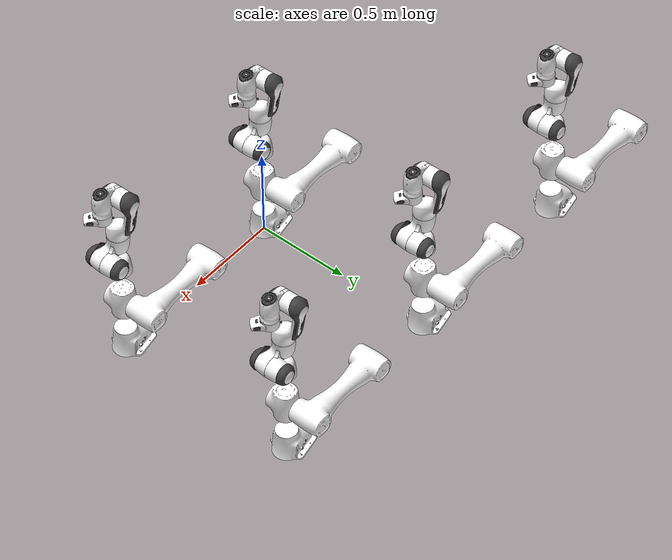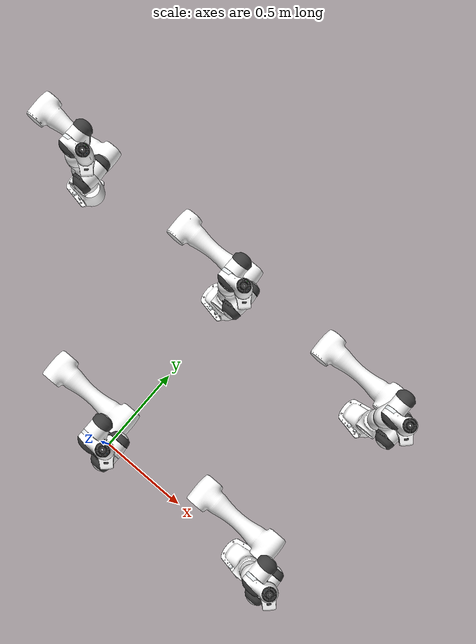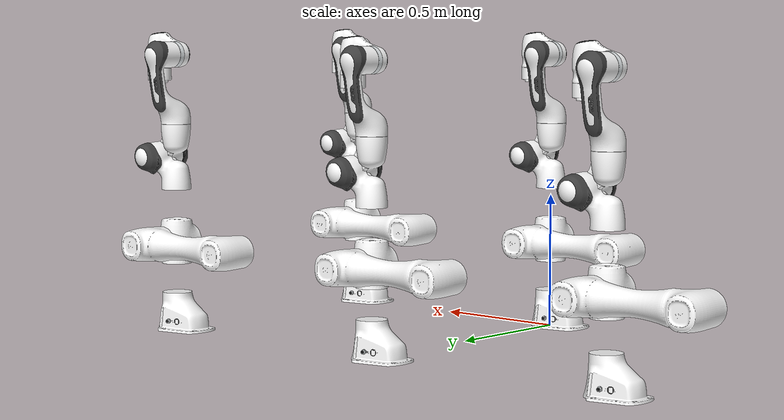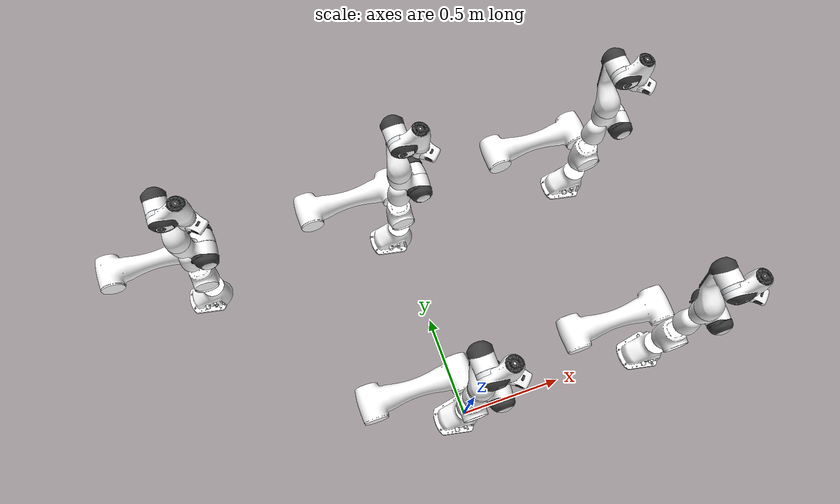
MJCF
<mujoco><compiler angle="radian" meshdir="assets" autolimits="true" />

  <option integrator="implicitfast" />

  <asset>
    <material name="white" rgba="1 1 1 1" />
    <material name="off_white" rgba="0.901961 0.921569 0.929412 1" />
    <material name="dark_grey" rgba="0.25 0.25 0.25 1" />
    <material name="green" rgba="0 1 0 1" />
    <material name="light_blue" rgba="0.039216 0.541176 0.780392 1" />

    <mesh name="link0_c" file="link0.stl" />
    <mesh name="link1_c" file="link1.stl" />
    <mesh name="link2_c" file="link2.stl" />
    <mesh name="link3_c" file="link3.stl" />
    <mesh name="link4_c" file="link4.stl" />
    <mesh name="link5_c0" file="link5_collision_0.obj" />
    <mesh name="link5_c1" file="link5_collision_1.obj" />
    <mesh name="link5_c2" file="link5_collision_2.obj" />
    <mesh name="link6_c" file="link6.stl" />
    <mesh name="link7_c" file="link7.stl" />

    <mesh file="link0_0.obj" />
    <mesh file="link0_1.obj" />
    <mesh file="link0_2.obj" />
    <mesh file="link0_3.obj" />
    <mesh file="link0_4.obj" />
    <mesh file="link0_5.obj" />
    <mesh file="link0_7.obj" />
    <mesh file="link0_8.obj" />
    <mesh file="link0_9.obj" />
    <mesh file="link0_10.obj" />
    <mesh file="link0_11.obj" />
    <mesh file="link1.obj" />
    <mesh file="link2.obj" />
    <mesh file="link3_0.obj" />
    <mesh file="link3_1.obj" />
    <mesh file="link3_2.obj" />
    <mesh file="link3_3.obj" />
    <mesh file="link4_0.obj" />
    <mesh file="link4_1.obj" />
    <mesh file="link4_2.obj" />
    <mesh file="link4_3.obj" />
    <mesh file="link5_0.obj" />
    <mesh file="link5_1.obj" />
    <mesh file="link5_2.obj" />
    <mesh file="link6_0.obj" />
    <mesh file="link6_1.obj" />
    <mesh file="link6_2.obj" />
    <mesh file="link6_3.obj" />
    <mesh file="link6_4.obj" />
    <mesh file="link6_5.obj" />
    <mesh file="link6_6.obj" />
    <mesh file="link6_7.obj" />
    <mesh file="link6_8.obj" />
    <mesh file="link6_9.obj" />
    <mesh file="link6_10.obj" />
    <mesh file="link6_11.obj" />
    <mesh file="link6_12.obj" />
    <mesh file="link6_13.obj" />
    <mesh file="link6_14.obj" />
    <mesh file="link6_15.obj" />
    <mesh file="link6_16.obj" />
    <mesh file="link7_0.obj" />
    <mesh file="link7_1.obj" />
    <mesh file="link7_2.obj" />
    <mesh file="link7_3.obj" />
    <mesh file="link7_4.obj" />
    <mesh file="link7_5.obj" />
    <mesh file="link7_6.obj" />
    <mesh file="link7_7.obj" />
  </asset>

  <worldbody><body name="link0_copy_0" childclass="panda" pos="0 0 0">
      <inertial mass="0.629769" pos="-0.041018 -0.00014 0.049974" fullinertia="0.00315 0.00388 0.004285 8.2904e-7 0.00015 8.2299e-6" />
      <geom mesh="link0_0" material="off_white" class="panda/visual" />
      <geom mesh="link0_1" material="dark_grey" class="panda/visual" />
      <geom mesh="link0_2" material="off_white" class="panda/visual" />
      <geom mesh="link0_3" material="dark_grey" class="panda/visual" />
      <geom mesh="link0_4" material="off_white" class="panda/visual" />
      <geom mesh="link0_5" material="dark_grey" class="panda/visual" />
      <geom mesh="link0_7" material="white" class="panda/visual" />
      <geom mesh="link0_8" material="white" class="panda/visual" />
      <geom mesh="link0_9" material="dark_grey" class="panda/visual" />
      <geom mesh="link0_10" material="off_white" class="panda/visual" />
      <geom mesh="link0_11" material="white" class="panda/visual" />
      <geom mesh="link0_c" class="panda/collision" />
      <body name="link1_copy_0" pos="0 0 0.333">
        <inertial mass="4.970684" pos="0.003875 0.002081 -0.04762" fullinertia="0.70337 0.70661 0.0091170 -0.00013900 0.0067720 0.019169" />
        <joint name="joint1_copy_0" />
        <geom material="white" mesh="link1" class="panda/visual" />
        <geom mesh="link1_c" class="panda/collision" />
        <body name="link2_copy_0" quat="1 -1 0 0">
          <inertial mass="0.646926" pos="-0.003141 -0.02872 0.003495" fullinertia="0.0079620 2.8110e-2 2.5995e-2 -3.925e-3 1.0254e-2 7.04e-4" />
          <joint name="joint2_copy_0" range="-1.7628 1.7628" />
          <geom material="white" mesh="link2" class="panda/visual" />
          <geom mesh="link2_c" class="panda/collision" />
          <body name="link3_copy_0" pos="0 -0.316 0" quat="1 1 0 0">
            <joint name="joint3_copy_0" />
            <inertial mass="3.228604" pos="2.7518e-2 3.9252e-2 -6.6502e-2" fullinertia="3.7242e-2 3.6155e-2 1.083e-2 -4.761e-3 -1.1396e-2 -1.2805e-2" />
            <geom mesh="link3_0" material="white" class="panda/visual" />
            <geom mesh="link3_1" material="white" class="panda/visual" />
            <geom mesh="link3_2" material="white" class="panda/visual" />
            <geom mesh="link3_3" material="dark_grey" class="panda/visual" />
            <geom mesh="link3_c" class="panda/collision" />
            <body name="link4_copy_0" pos="0.0825 0 0" quat="1 1 0 0">
              <inertial mass="3.587895" pos="-5.317e-2 1.04419e-1 2.7454e-2" fullinertia="2.5853e-2 1.9552e-2 2.8323e-2 7.796e-3 -1.332e-3 8.641e-3" />
              <joint name="joint4_copy_0" range="-3.0718 -0.0698" />
              <geom mesh="link4_0" material="white" class="panda/visual" />
              <geom mesh="link4_1" material="white" class="panda/visual" />
              <geom mesh="link4_2" material="dark_grey" class="panda/visual" />
              <geom mesh="link4_3" material="white" class="panda/visual" />
              <geom mesh="link4_c" class="panda/collision" />
              <body name="link5_copy_0" pos="-0.0825 0.384 0" quat="1 -1 0 0">
                <inertial mass="1.225946" pos="-1.1953e-2 4.1065e-2 -3.8437e-2" fullinertia="3.5549e-2 2.9474e-2 8.627e-3 -2.117e-3 -4.037e-3 2.29e-4" />
                <joint name="joint5_copy_0" />
                <geom mesh="link5_0" material="dark_grey" class="panda/visual" />
                <geom mesh="link5_1" material="white" class="panda/visual" />
                <geom mesh="link5_2" material="white" class="panda/visual" />
                <geom mesh="link5_c0" class="panda/collision" />
                <geom mesh="link5_c1" class="panda/collision" />
                <geom mesh="link5_c2" class="panda/collision" />
                <body name="link6_copy_0" quat="1 1 0 0">
                  <inertial mass="1.666555" pos="6.0149e-2 -1.4117e-2 -1.0517e-2" fullinertia="1.964e-3 4.354e-3 5.433e-3 1.09e-4 -1.158e-3 3.41e-4" />
                  <joint name="joint6_copy_0" range="-0.0175 3.7525" />
                  <geom mesh="link6_0" material="off_white" class="panda/visual" />
                  <geom mesh="link6_1" material="white" class="panda/visual" />
                  <geom mesh="link6_2" material="dark_grey" class="panda/visual" />
                  <geom mesh="link6_3" material="white" class="panda/visual" />
                  <geom mesh="link6_4" material="white" class="panda/visual" />
                  <geom mesh="link6_5" material="white" class="panda/visual" />
                  <geom mesh="link6_6" material="white" class="panda/visual" />
                  <geom mesh="link6_7" material="light_blue" class="panda/visual" />
                  <geom mesh="link6_8" material="light_blue" class="panda/visual" />
                  <geom mesh="link6_9" material="dark_grey" class="panda/visual" />
                  <geom mesh="link6_10" material="dark_grey" class="panda/visual" />
                  <geom mesh="link6_11" material="white" class="panda/visual" />
                  <geom mesh="link6_12" material="green" class="panda/visual" />
                  <geom mesh="link6_13" material="white" class="panda/visual" />
                  <geom mesh="link6_14" material="dark_grey" class="panda/visual" />
                  <geom mesh="link6_15" material="dark_grey" class="panda/visual" />
                  <geom mesh="link6_16" material="white" class="panda/visual" />
                  <geom mesh="link6_c" class="panda/collision" />
                  <body name="link7_copy_0" pos="0.088 0 0" quat="1 1 0 0">
                    <inertial mass="7.35522e-01" pos="1.0517e-2 -4.252e-3 6.1597e-2" fullinertia="1.2516e-2 1.0027e-2 4.815e-3 -4.28e-4 -1.196e-3 -7.41e-4" />
                    <joint name="joint7_copy_0" />
                    <geom mesh="link7_0" material="white" class="panda/visual" />
                    <geom mesh="link7_1" material="dark_grey" class="panda/visual" />
                    <geom mesh="link7_2" material="dark_grey" class="panda/visual" />
                    <geom mesh="link7_3" material="dark_grey" class="panda/visual" />
                    <geom mesh="link7_4" material="dark_grey" class="panda/visual" />
                    <geom mesh="link7_5" material="dark_grey" class="panda/visual" />
                    <geom mesh="link7_6" material="dark_grey" class="panda/visual" />
                    <geom mesh="link7_7" material="white" class="panda/visual" />
                    <geom mesh="link7_c" class="panda/collision" />
                    <body name="attachment_copy_0" pos="0 0 0.107" quat="0.3826834 0 0 0.9238795">
                      <site name="attachment_site_copy_0" rgba="1 0 0 1" size="0.01" group="1" quat="0 0 0 1" />
                    </body>
                  </body>
                </body>
              </body>
            </body>
          </body>
        </body>
      </body>
    </body>
  <body name="link0_copy_1" childclass="panda" pos="1 0 0">
      <inertial mass="0.629769" pos="-0.041018 -0.00014 0.049974" fullinertia="0.00315 0.00388 0.004285 8.2904e-7 0.00015 8.2299e-6" />
      <geom mesh="link0_0" material="off_white" class="panda/visual" />
      <geom mesh="link0_1" material="dark_grey" class="panda/visual" />
      <geom mesh="link0_2" material="off_white" class="panda/visual" />
      <geom mesh="link0_3" material="dark_grey" class="panda/visual" />
      <geom mesh="link0_4" material="off_white" class="panda/visual" />
      <geom mesh="link0_5" material="dark_grey" class="panda/visual" />
      <geom mesh="link0_7" material="white" class="panda/visual" />
      <geom mesh="link0_8" material="white" class="panda/visual" />
      <geom mesh="link0_9" material="dark_grey" class="panda/visual" />
      <geom mesh="link0_10" material="off_white" class="panda/visual" />
      <geom mesh="link0_11" material="white" class="panda/visual" />
      <geom mesh="link0_c" class="panda/collision" />
      <body name="link1_copy_1" pos="0 0 0.333">
        <inertial mass="4.970684" pos="0.003875 0.002081 -0.04762" fullinertia="0.70337 0.70661 0.0091170 -0.00013900 0.0067720 0.019169" />
        <joint name="joint1_copy_1" />
        <geom material="white" mesh="link1" class="panda/visual" />
        <geom mesh="link1_c" class="panda/collision" />
        <body name="link2_copy_1" quat="1 -1 0 0">
          <inertial mass="0.646926" pos="-0.003141 -0.02872 0.003495" fullinertia="0.0079620 2.8110e-2 2.5995e-2 -3.925e-3 1.0254e-2 7.04e-4" />
          <joint name="joint2_copy_1" range="-1.7628 1.7628" />
          <geom material="white" mesh="link2" class="panda/visual" />
          <geom mesh="link2_c" class="panda/collision" />
          <body name="link3_copy_1" pos="0 -0.316 0" quat="1 1 0 0">
            <joint name="joint3_copy_1" />
            <inertial mass="3.228604" pos="2.7518e-2 3.9252e-2 -6.6502e-2" fullinertia="3.7242e-2 3.6155e-2 1.083e-2 -4.761e-3 -1.1396e-2 -1.2805e-2" />
            <geom mesh="link3_0" material="white" class="panda/visual" />
            <geom mesh="link3_1" material="white" class="panda/visual" />
            <geom mesh="link3_2" material="white" class="panda/visual" />
            <geom mesh="link3_3" material="dark_grey" class="panda/visual" />
            <geom mesh="link3_c" class="panda/collision" />
            <body name="link4_copy_1" pos="0.0825 0 0" quat="1 1 0 0">
              <inertial mass="3.587895" pos="-5.317e-2 1.04419e-1 2.7454e-2" fullinertia="2.5853e-2 1.9552e-2 2.8323e-2 7.796e-3 -1.332e-3 8.641e-3" />
              <joint name="joint4_copy_1" range="-3.0718 -0.0698" />
              <geom mesh="link4_0" material="white" class="panda/visual" />
              <geom mesh="link4_1" material="white" class="panda/visual" />
              <geom mesh="link4_2" material="dark_grey" class="panda/visual" />
              <geom mesh="link4_3" material="white" class="panda/visual" />
              <geom mesh="link4_c" class="panda/collision" />
              <body name="link5_copy_1" pos="-0.0825 0.384 0" quat="1 -1 0 0">
                <inertial mass="1.225946" pos="-1.1953e-2 4.1065e-2 -3.8437e-2" fullinertia="3.5549e-2 2.9474e-2 8.627e-3 -2.117e-3 -4.037e-3 2.29e-4" />
                <joint name="joint5_copy_1" />
                <geom mesh="link5_0" material="dark_grey" class="panda/visual" />
                <geom mesh="link5_1" material="white" class="panda/visual" />
                <geom mesh="link5_2" material="white" class="panda/visual" />
                <geom mesh="link5_c0" class="panda/collision" />
                <geom mesh="link5_c1" class="panda/collision" />
                <geom mesh="link5_c2" class="panda/collision" />
                <body name="link6_copy_1" quat="1 1 0 0">
                  <inertial mass="1.666555" pos="6.0149e-2 -1.4117e-2 -1.0517e-2" fullinertia="1.964e-3 4.354e-3 5.433e-3 1.09e-4 -1.158e-3 3.41e-4" />
                  <joint name="joint6_copy_1" range="-0.0175 3.7525" />
                  <geom mesh="link6_0" material="off_white" class="panda/visual" />
                  <geom mesh="link6_1" material="white" class="panda/visual" />
                  <geom mesh="link6_2" material="dark_grey" class="panda/visual" />
                  <geom mesh="link6_3" material="white" class="panda/visual" />
                  <geom mesh="link6_4" material="white" class="panda/visual" />
                  <geom mesh="link6_5" material="white" class="panda/visual" />
                  <geom mesh="link6_6" material="white" class="panda/visual" />
                  <geom mesh="link6_7" material="light_blue" class="panda/visual" />
                  <geom mesh="link6_8" material="light_blue" class="panda/visual" />
                  <geom mesh="link6_9" material="dark_grey" class="panda/visual" />
                  <geom mesh="link6_10" material="dark_grey" class="panda/visual" />
                  <geom mesh="link6_11" material="white" class="panda/visual" />
                  <geom mesh="link6_12" material="green" class="panda/visual" />
                  <geom mesh="link6_13" material="white" class="panda/visual" />
                  <geom mesh="link6_14" material="dark_grey" class="panda/visual" />
                  <geom mesh="link6_15" material="dark_grey" class="panda/visual" />
                  <geom mesh="link6_16" material="white" class="panda/visual" />
                  <geom mesh="link6_c" class="panda/collision" />
                  <body name="link7_copy_1" pos="0.088 0 0" quat="1 1 0 0">
                    <inertial mass="7.35522e-01" pos="1.0517e-2 -4.252e-3 6.1597e-2" fullinertia="1.2516e-2 1.0027e-2 4.815e-3 -4.28e-4 -1.196e-3 -7.41e-4" />
                    <joint name="joint7_copy_1" />
                    <geom mesh="link7_0" material="white" class="panda/visual" />
                    <geom mesh="link7_1" material="dark_grey" class="panda/visual" />
                    <geom mesh="link7_2" material="dark_grey" class="panda/visual" />
                    <geom mesh="link7_3" material="dark_grey" class="panda/visual" />
                    <geom mesh="link7_4" material="dark_grey" class="panda/visual" />
                    <geom mesh="link7_5" material="dark_grey" class="panda/visual" />
                    <geom mesh="link7_6" material="dark_grey" class="panda/visual" />
                    <geom mesh="link7_7" material="white" class="panda/visual" />
                    <geom mesh="link7_c" class="panda/collision" />
                    <body name="attachment_copy_1" pos="0 0 0.107" quat="0.3826834 0 0 0.9238795">
                      <site name="attachment_site_copy_1" rgba="1 0 0 1" size="0.01" group="1" quat="0 0 0 1" />
                    </body>
                  </body>
                </body>
              </body>
            </body>
          </body>
        </body>
      </body>
    </body>
  <body name="link0_copy_2" childclass="panda" pos="1 1 0">
      <inertial mass="0.629769" pos="-0.041018 -0.00014 0.049974" fullinertia="0.00315 0.00388 0.004285 8.2904e-7 0.00015 8.2299e-6" />
      <geom mesh="link0_0" material="off_white" class="panda/visual" />
      <geom mesh="link0_1" material="dark_grey" class="panda/visual" />
      <geom mesh="link0_2" material="off_white" class="panda/visual" />
      <geom mesh="link0_3" material="dark_grey" class="panda/visual" />
      <geom mesh="link0_4" material="off_white" class="panda/visual" />
      <geom mesh="link0_5" material="dark_grey" class="panda/visual" />
      <geom mesh="link0_7" material="white" class="panda/visual" />
      <geom mesh="link0_8" material="white" class="panda/visual" />
      <geom mesh="link0_9" material="dark_grey" class="panda/visual" />
      <geom mesh="link0_10" material="off_white" class="panda/visual" />
      <geom mesh="link0_11" material="white" class="panda/visual" />
      <geom mesh="link0_c" class="panda/collision" />
      <body name="link1_copy_2" pos="0 0 0.333">
        <inertial mass="4.970684" pos="0.003875 0.002081 -0.04762" fullinertia="0.70337 0.70661 0.0091170 -0.00013900 0.0067720 0.019169" />
        <joint name="joint1_copy_2" />
        <geom material="white" mesh="link1" class="panda/visual" />
        <geom mesh="link1_c" class="panda/collision" />
        <body name="link2_copy_2" quat="1 -1 0 0">
          <inertial mass="0.646926" pos="-0.003141 -0.02872 0.003495" fullinertia="0.0079620 2.8110e-2 2.5995e-2 -3.925e-3 1.0254e-2 7.04e-4" />
          <joint name="joint2_copy_2" range="-1.7628 1.7628" />
          <geom material="white" mesh="link2" class="panda/visual" />
          <geom mesh="link2_c" class="panda/collision" />
          <body name="link3_copy_2" pos="0 -0.316 0" quat="1 1 0 0">
            <joint name="joint3_copy_2" />
            <inertial mass="3.228604" pos="2.7518e-2 3.9252e-2 -6.6502e-2" fullinertia="3.7242e-2 3.6155e-2 1.083e-2 -4.761e-3 -1.1396e-2 -1.2805e-2" />
            <geom mesh="link3_0" material="white" class="panda/visual" />
            <geom mesh="link3_1" material="white" class="panda/visual" />
            <geom mesh="link3_2" material="white" class="panda/visual" />
            <geom mesh="link3_3" material="dark_grey" class="panda/visual" />
            <geom mesh="link3_c" class="panda/collision" />
            <body name="link4_copy_2" pos="0.0825 0 0" quat="1 1 0 0">
              <inertial mass="3.587895" pos="-5.317e-2 1.04419e-1 2.7454e-2" fullinertia="2.5853e-2 1.9552e-2 2.8323e-2 7.796e-3 -1.332e-3 8.641e-3" />
              <joint name="joint4_copy_2" range="-3.0718 -0.0698" />
              <geom mesh="link4_0" material="white" class="panda/visual" />
              <geom mesh="link4_1" material="white" class="panda/visual" />
              <geom mesh="link4_2" material="dark_grey" class="panda/visual" />
              <geom mesh="link4_3" material="white" class="panda/visual" />
              <geom mesh="link4_c" class="panda/collision" />
              <body name="link5_copy_2" pos="-0.0825 0.384 0" quat="1 -1 0 0">
                <inertial mass="1.225946" pos="-1.1953e-2 4.1065e-2 -3.8437e-2" fullinertia="3.5549e-2 2.9474e-2 8.627e-3 -2.117e-3 -4.037e-3 2.29e-4" />
                <joint name="joint5_copy_2" />
                <geom mesh="link5_0" material="dark_grey" class="panda/visual" />
                <geom mesh="link5_1" material="white" class="panda/visual" />
                <geom mesh="link5_2" material="white" class="panda/visual" />
                <geom mesh="link5_c0" class="panda/collision" />
                <geom mesh="link5_c1" class="panda/collision" />
                <geom mesh="link5_c2" class="panda/collision" />
                <body name="link6_copy_2" quat="1 1 0 0">
                  <inertial mass="1.666555" pos="6.0149e-2 -1.4117e-2 -1.0517e-2" fullinertia="1.964e-3 4.354e-3 5.433e-3 1.09e-4 -1.158e-3 3.41e-4" />
                  <joint name="joint6_copy_2" range="-0.0175 3.7525" />
                  <geom mesh="link6_0" material="off_white" class="panda/visual" />
                  <geom mesh="link6_1" material="white" class="panda/visual" />
                  <geom mesh="link6_2" material="dark_grey" class="panda/visual" />
                  <geom mesh="link6_3" material="white" class="panda/visual" />
                  <geom mesh="link6_4" material="white" class="panda/visual" />
                  <geom mesh="link6_5" material="white" class="panda/visual" />
                  <geom mesh="link6_6" material="white" class="panda/visual" />
                  <geom mesh="link6_7" material="light_blue" class="panda/visual" />
                  <geom mesh="link6_8" material="light_blue" class="panda/visual" />
                  <geom mesh="link6_9" material="dark_grey" class="panda/visual" />
                  <geom mesh="link6_10" material="dark_grey" class="panda/visual" />
                  <geom mesh="link6_11" material="white" class="panda/visual" />
                  <geom mesh="link6_12" material="green" class="panda/visual" />
                  <geom mesh="link6_13" material="white" class="panda/visual" />
                  <geom mesh="link6_14" material="dark_grey" class="panda/visual" />
                  <geom mesh="link6_15" material="dark_grey" class="panda/visual" />
                  <geom mesh="link6_16" material="white" class="panda/visual" />
                  <geom mesh="link6_c" class="panda/collision" />
                  <body name="link7_copy_2" pos="0.088 0 0" quat="1 1 0 0">
                    <inertial mass="7.35522e-01" pos="1.0517e-2 -4.252e-3 6.1597e-2" fullinertia="1.2516e-2 1.0027e-2 4.815e-3 -4.28e-4 -1.196e-3 -7.41e-4" />
                    <joint name="joint7_copy_2" />
                    <geom mesh="link7_0" material="white" class="panda/visual" />
                    <geom mesh="link7_1" material="dark_grey" class="panda/visual" />
                    <geom mesh="link7_2" material="dark_grey" class="panda/visual" />
                    <geom mesh="link7_3" material="dark_grey" class="panda/visual" />
                    <geom mesh="link7_4" material="dark_grey" class="panda/visual" />
                    <geom mesh="link7_5" material="dark_grey" class="panda/visual" />
                    <geom mesh="link7_6" material="dark_grey" class="panda/visual" />
                    <geom mesh="link7_7" material="white" class="panda/visual" />
                    <geom mesh="link7_c" class="panda/collision" />
                    <body name="attachment_copy_2" pos="0 0 0.107" quat="0.3826834 0 0 0.9238795">
                      <site name="attachment_site_copy_2" rgba="1 0 0 1" size="0.01" group="1" quat="0 0 0 1" />
                    </body>
                  </body>
                </body>
              </body>
            </body>
          </body>
        </body>
      </body>
    </body>
  <body name="link0_copy_3" childclass="panda" pos="0 1 0">
      <inertial mass="0.629769" pos="-0.041018 -0.00014 0.049974" fullinertia="0.00315 0.00388 0.004285 8.2904e-7 0.00015 8.2299e-6" />
      <geom mesh="link0_0" material="off_white" class="panda/visual" />
      <geom mesh="link0_1" material="dark_grey" class="panda/visual" />
      <geom mesh="link0_2" material="off_white" class="panda/visual" />
      <geom mesh="link0_3" material="dark_grey" class="panda/visual" />
      <geom mesh="link0_4" material="off_white" class="panda/visual" />
      <geom mesh="link0_5" material="dark_grey" class="panda/visual" />
      <geom mesh="link0_7" material="white" class="panda/visual" />
      <geom mesh="link0_8" material="white" class="panda/visual" />
      <geom mesh="link0_9" material="dark_grey" class="panda/visual" />
      <geom mesh="link0_10" material="off_white" class="panda/visual" />
      <geom mesh="link0_11" material="white" class="panda/visual" />
      <geom mesh="link0_c" class="panda/collision" />
      <body name="link1_copy_3" pos="0 0 0.333">
        <inertial mass="4.970684" pos="0.003875 0.002081 -0.04762" fullinertia="0.70337 0.70661 0.0091170 -0.00013900 0.0067720 0.019169" />
        <joint name="joint1_copy_3" />
        <geom material="white" mesh="link1" class="panda/visual" />
        <geom mesh="link1_c" class="panda/collision" />
        <body name="link2_copy_3" quat="1 -1 0 0">
          <inertial mass="0.646926" pos="-0.003141 -0.02872 0.003495" fullinertia="0.0079620 2.8110e-2 2.5995e-2 -3.925e-3 1.0254e-2 7.04e-4" />
          <joint name="joint2_copy_3" range="-1.7628 1.7628" />
          <geom material="white" mesh="link2" class="panda/visual" />
          <geom mesh="link2_c" class="panda/collision" />
          <body name="link3_copy_3" pos="0 -0.316 0" quat="1 1 0 0">
            <joint name="joint3_copy_3" />
            <inertial mass="3.228604" pos="2.7518e-2 3.9252e-2 -6.6502e-2" fullinertia="3.7242e-2 3.6155e-2 1.083e-2 -4.761e-3 -1.1396e-2 -1.2805e-2" />
            <geom mesh="link3_0" material="white" class="panda/visual" />
            <geom mesh="link3_1" material="white" class="panda/visual" />
            <geom mesh="link3_2" material="white" class="panda/visual" />
            <geom mesh="link3_3" material="dark_grey" class="panda/visual" />
            <geom mesh="link3_c" class="panda/collision" />
            <body name="link4_copy_3" pos="0.0825 0 0" quat="1 1 0 0">
              <inertial mass="3.587895" pos="-5.317e-2 1.04419e-1 2.7454e-2" fullinertia="2.5853e-2 1.9552e-2 2.8323e-2 7.796e-3 -1.332e-3 8.641e-3" />
              <joint name="joint4_copy_3" range="-3.0718 -0.0698" />
              <geom mesh="link4_0" material="white" class="panda/visual" />
              <geom mesh="link4_1" material="white" class="panda/visual" />
              <geom mesh="link4_2" material="dark_grey" class="panda/visual" />
              <geom mesh="link4_3" material="white" class="panda/visual" />
              <geom mesh="link4_c" class="panda/collision" />
              <body name="link5_copy_3" pos="-0.0825 0.384 0" quat="1 -1 0 0">
                <inertial mass="1.225946" pos="-1.1953e-2 4.1065e-2 -3.8437e-2" fullinertia="3.5549e-2 2.9474e-2 8.627e-3 -2.117e-3 -4.037e-3 2.29e-4" />
                <joint name="joint5_copy_3" />
                <geom mesh="link5_0" material="dark_grey" class="panda/visual" />
                <geom mesh="link5_1" material="white" class="panda/visual" />
                <geom mesh="link5_2" material="white" class="panda/visual" />
                <geom mesh="link5_c0" class="panda/collision" />
                <geom mesh="link5_c1" class="panda/collision" />
                <geom mesh="link5_c2" class="panda/collision" />
                <body name="link6_copy_3" quat="1 1 0 0">
                  <inertial mass="1.666555" pos="6.0149e-2 -1.4117e-2 -1.0517e-2" fullinertia="1.964e-3 4.354e-3 5.433e-3 1.09e-4 -1.158e-3 3.41e-4" />
                  <joint name="joint6_copy_3" range="-0.0175 3.7525" />
                  <geom mesh="link6_0" material="off_white" class="panda/visual" />
                  <geom mesh="link6_1" material="white" class="panda/visual" />
                  <geom mesh="link6_2" material="dark_grey" class="panda/visual" />
                  <geom mesh="link6_3" material="white" class="panda/visual" />
                  <geom mesh="link6_4" material="white" class="panda/visual" />
                  <geom mesh="link6_5" material="white" class="panda/visual" />
                  <geom mesh="link6_6" material="white" class="panda/visual" />
                  <geom mesh="link6_7" material="light_blue" class="panda/visual" />
                  <geom mesh="link6_8" material="light_blue" class="panda/visual" />
                  <geom mesh="link6_9" material="dark_grey" class="panda/visual" />
                  <geom mesh="link6_10" material="dark_grey" class="panda/visual" />
                  <geom mesh="link6_11" material="white" class="panda/visual" />
                  <geom mesh="link6_12" material="green" class="panda/visual" />
                  <geom mesh="link6_13" material="white" class="panda/visual" />
                  <geom mesh="link6_14" material="dark_grey" class="panda/visual" />
                  <geom mesh="link6_15" material="dark_grey" class="panda/visual" />
                  <geom mesh="link6_16" material="white" class="panda/visual" />
                  <geom mesh="link6_c" class="panda/collision" />
                  <body name="link7_copy_3" pos="0.088 0 0" quat="1 1 0 0">
                    <inertial mass="7.35522e-01" pos="1.0517e-2 -4.252e-3 6.1597e-2" fullinertia="1.2516e-2 1.0027e-2 4.815e-3 -4.28e-4 -1.196e-3 -7.41e-4" />
                    <joint name="joint7_copy_3" />
                    <geom mesh="link7_0" material="white" class="panda/visual" />
                    <geom mesh="link7_1" material="dark_grey" class="panda/visual" />
                    <geom mesh="link7_2" material="dark_grey" class="panda/visual" />
                    <geom mesh="link7_3" material="dark_grey" class="panda/visual" />
                    <geom mesh="link7_4" material="dark_grey" class="panda/visual" />
                    <geom mesh="link7_5" material="dark_grey" class="panda/visual" />
                    <geom mesh="link7_6" material="dark_grey" class="panda/visual" />
                    <geom mesh="link7_7" material="white" class="panda/visual" />
                    <geom mesh="link7_c" class="panda/collision" />
                    <body name="attachment_copy_3" pos="0 0 0.107" quat="0.3826834 0 0 0.9238795">
                      <site name="attachment_site_copy_3" rgba="1 0 0 1" size="0.01" group="1" quat="0 0 0 1" />
                    </body>
                  </body>
                </body>
              </body>
            </body>
          </body>
        </body>
      </body>
    </body>
  <body name="link0_copy_4" childclass="panda" pos="-1 1 0">
      <inertial mass="0.629769" pos="-0.041018 -0.00014 0.049974" fullinertia="0.00315 0.00388 0.004285 8.2904e-7 0.00015 8.2299e-6" />
      <geom mesh="link0_0" material="off_white" class="panda/visual" />
      <geom mesh="link0_1" material="dark_grey" class="panda/visual" />
      <geom mesh="link0_2" material="off_white" class="panda/visual" />
      <geom mesh="link0_3" material="dark_grey" class="panda/visual" />
      <geom mesh="link0_4" material="off_white" class="panda/visual" />
      <geom mesh="link0_5" material="dark_grey" class="panda/visual" />
      <geom mesh="link0_7" material="white" class="panda/visual" />
      <geom mesh="link0_8" material="white" class="panda/visual" />
      <geom mesh="link0_9" material="dark_grey" class="panda/visual" />
      <geom mesh="link0_10" material="off_white" class="panda/visual" />
      <geom mesh="link0_11" material="white" class="panda/visual" />
      <geom mesh="link0_c" class="panda/collision" />
      <body name="link1_copy_4" pos="0 0 0.333">
        <inertial mass="4.970684" pos="0.003875 0.002081 -0.04762" fullinertia="0.70337 0.70661 0.0091170 -0.00013900 0.0067720 0.019169" />
        <joint name="joint1_copy_4" />
        <geom material="white" mesh="link1" class="panda/visual" />
        <geom mesh="link1_c" class="panda/collision" />
        <body name="link2_copy_4" quat="1 -1 0 0">
          <inertial mass="0.646926" pos="-0.003141 -0.02872 0.003495" fullinertia="0.0079620 2.8110e-2 2.5995e-2 -3.925e-3 1.0254e-2 7.04e-4" />
          <joint name="joint2_copy_4" range="-1.7628 1.7628" />
          <geom material="white" mesh="link2" class="panda/visual" />
          <geom mesh="link2_c" class="panda/collision" />
          <body name="link3_copy_4" pos="0 -0.316 0" quat="1 1 0 0">
            <joint name="joint3_copy_4" />
            <inertial mass="3.228604" pos="2.7518e-2 3.9252e-2 -6.6502e-2" fullinertia="3.7242e-2 3.6155e-2 1.083e-2 -4.761e-3 -1.1396e-2 -1.2805e-2" />
            <geom mesh="link3_0" material="white" class="panda/visual" />
            <geom mesh="link3_1" material="white" class="panda/visual" />
            <geom mesh="link3_2" material="white" class="panda/visual" />
            <geom mesh="link3_3" material="dark_grey" class="panda/visual" />
            <geom mesh="link3_c" class="panda/collision" />
            <body name="link4_copy_4" pos="0.0825 0 0" quat="1 1 0 0">
              <inertial mass="3.587895" pos="-5.317e-2 1.04419e-1 2.7454e-2" fullinertia="2.5853e-2 1.9552e-2 2.8323e-2 7.796e-3 -1.332e-3 8.641e-3" />
              <joint name="joint4_copy_4" range="-3.0718 -0.0698" />
              <geom mesh="link4_0" material="white" class="panda/visual" />
              <geom mesh="link4_1" material="white" class="panda/visual" />
              <geom mesh="link4_2" material="dark_grey" class="panda/visual" />
              <geom mesh="link4_3" material="white" class="panda/visual" />
              <geom mesh="link4_c" class="panda/collision" />
              <body name="link5_copy_4" pos="-0.0825 0.384 0" quat="1 -1 0 0">
                <inertial mass="1.225946" pos="-1.1953e-2 4.1065e-2 -3.8437e-2" fullinertia="3.5549e-2 2.9474e-2 8.627e-3 -2.117e-3 -4.037e-3 2.29e-4" />
                <joint name="joint5_copy_4" />
                <geom mesh="link5_0" material="dark_grey" class="panda/visual" />
                <geom mesh="link5_1" material="white" class="panda/visual" />
                <geom mesh="link5_2" material="white" class="panda/visual" />
                <geom mesh="link5_c0" class="panda/collision" />
                <geom mesh="link5_c1" class="panda/collision" />
                <geom mesh="link5_c2" class="panda/collision" />
                <body name="link6_copy_4" quat="1 1 0 0">
                  <inertial mass="1.666555" pos="6.0149e-2 -1.4117e-2 -1.0517e-2" fullinertia="1.964e-3 4.354e-3 5.433e-3 1.09e-4 -1.158e-3 3.41e-4" />
                  <joint name="joint6_copy_4" range="-0.0175 3.7525" />
                  <geom mesh="link6_0" material="off_white" class="panda/visual" />
                  <geom mesh="link6_1" material="white" class="panda/visual" />
                  <geom mesh="link6_2" material="dark_grey" class="panda/visual" />
                  <geom mesh="link6_3" material="white" class="panda/visual" />
                  <geom mesh="link6_4" material="white" class="panda/visual" />
                  <geom mesh="link6_5" material="white" class="panda/visual" />
                  <geom mesh="link6_6" material="white" class="panda/visual" />
                  <geom mesh="link6_7" material="light_blue" class="panda/visual" />
                  <geom mesh="link6_8" material="light_blue" class="panda/visual" />
                  <geom mesh="link6_9" material="dark_grey" class="panda/visual" />
                  <geom mesh="link6_10" material="dark_grey" class="panda/visual" />
                  <geom mesh="link6_11" material="white" class="panda/visual" />
                  <geom mesh="link6_12" material="green" class="panda/visual" />
                  <geom mesh="link6_13" material="white" class="panda/visual" />
                  <geom mesh="link6_14" material="dark_grey" class="panda/visual" />
                  <geom mesh="link6_15" material="dark_grey" class="panda/visual" />
                  <geom mesh="link6_16" material="white" class="panda/visual" />
                  <geom mesh="link6_c" class="panda/collision" />
                  <body name="link7_copy_4" pos="0.088 0 0" quat="1 1 0 0">
                    <inertial mass="7.35522e-01" pos="1.0517e-2 -4.252e-3 6.1597e-2" fullinertia="1.2516e-2 1.0027e-2 4.815e-3 -4.28e-4 -1.196e-3 -7.41e-4" />
                    <joint name="joint7_copy_4" />
                    <geom mesh="link7_0" material="white" class="panda/visual" />
                    <geom mesh="link7_1" material="dark_grey" class="panda/visual" />
                    <geom mesh="link7_2" material="dark_grey" class="panda/visual" />
                    <geom mesh="link7_3" material="dark_grey" class="panda/visual" />
                    <geom mesh="link7_4" material="dark_grey" class="panda/visual" />
                    <geom mesh="link7_5" material="dark_grey" class="panda/visual" />
                    <geom mesh="link7_6" material="dark_grey" class="panda/visual" />
                    <geom mesh="link7_7" material="white" class="panda/visual" />
                    <geom mesh="link7_c" class="panda/collision" />
                    <body name="attachment_copy_4" pos="0 0 0.107" quat="0.3826834 0 0 0.9238795">
                      <site name="attachment_site_copy_4" rgba="1 0 0 1" size="0.01" group="1" quat="0 0 0 1" />
                    </body>
                  </body>
                </body>
              </body>
            </body>
          </body>
        </body>
      </body>
    </body>
  </worldbody><actuator><position class="big_joint" name="joint1_copy_0" joint="joint1_copy_0" forcerange="-87 87" ctrlrange="-2.8973 2.8973" />
    <position class="big_joint" name="joint2_copy_0" joint="joint2_copy_0" forcerange="-87 87" ctrlrange="-1.7628 1.7628" />
    <position class="big_joint" name="joint3_copy_0" joint="joint3_copy_0" forcerange="-87 87" ctrlrange="-2.8973 2.8973" />
    <position class="big_joint" name="joint4_copy_0" joint="joint4_copy_0" forcerange="-87 87" ctrlrange="-3.0718 -0.0698" />
    <position class="small_joint" name="joint5_copy_0" joint="joint5_copy_0" forcerange="-12 12" ctrlrange="-2.8973 2.8973" />
    <position class="small_joint" name="joint6_copy_0" joint="joint6_copy_0" forcerange="-12 12" ctrlrange="-0.0175 3.7525" />
    <position class="small_joint" name="joint7_copy_0" joint="joint7_copy_0" forcerange="-12 12" ctrlrange="-2.8973 2.8973" />
  <position class="big_joint" name="joint1_copy_1" joint="joint1_copy_1" forcerange="-87 87" ctrlrange="-2.8973 2.8973" />
    <position class="big_joint" name="joint2_copy_1" joint="joint2_copy_1" forcerange="-87 87" ctrlrange="-1.7628 1.7628" />
    <position class="big_joint" name="joint3_copy_1" joint="joint3_copy_1" forcerange="-87 87" ctrlrange="-2.8973 2.8973" />
    <position class="big_joint" name="joint4_copy_1" joint="joint4_copy_1" forcerange="-87 87" ctrlrange="-3.0718 -0.0698" />
    <position class="small_joint" name="joint5_copy_1" joint="joint5_copy_1" forcerange="-12 12" ctrlrange="-2.8973 2.8973" />
    <position class="small_joint" name="joint6_copy_1" joint="joint6_copy_1" forcerange="-12 12" ctrlrange="-0.0175 3.7525" />
    <position class="small_joint" name="joint7_copy_1" joint="joint7_copy_1" forcerange="-12 12" ctrlrange="-2.8973 2.8973" />
  <position class="big_joint" name="joint1_copy_2" joint="joint1_copy_2" forcerange="-87 87" ctrlrange="-2.8973 2.8973" />
    <position class="big_joint" name="joint2_copy_2" joint="joint2_copy_2" forcerange="-87 87" ctrlrange="-1.7628 1.7628" />
    <position class="big_joint" name="joint3_copy_2" joint="joint3_copy_2" forcerange="-87 87" ctrlrange="-2.8973 2.8973" />
    <position class="big_joint" name="joint4_copy_2" joint="joint4_copy_2" forcerange="-87 87" ctrlrange="-3.0718 -0.0698" />
    <position class="small_joint" name="joint5_copy_2" joint="joint5_copy_2" forcerange="-12 12" ctrlrange="-2.8973 2.8973" />
    <position class="small_joint" name="joint6_copy_2" joint="joint6_copy_2" forcerange="-12 12" ctrlrange="-0.0175 3.7525" />
    <position class="small_joint" name="joint7_copy_2" joint="joint7_copy_2" forcerange="-12 12" ctrlrange="-2.8973 2.8973" />
  <position class="big_joint" name="joint1_copy_3" joint="joint1_copy_3" forcerange="-87 87" ctrlrange="-2.8973 2.8973" />
    <position class="big_joint" name="joint2_copy_3" joint="joint2_copy_3" forcerange="-87 87" ctrlrange="-1.7628 1.7628" />
    <position class="big_joint" name="joint3_copy_3" joint="joint3_copy_3" forcerange="-87 87" ctrlrange="-2.8973 2.8973" />
    <position class="big_joint" name="joint4_copy_3" joint="joint4_copy_3" forcerange="-87 87" ctrlrange="-3.0718 -0.0698" />
    <position class="small_joint" name="joint5_copy_3" joint="joint5_copy_3" forcerange="-12 12" ctrlrange="-2.8973 2.8973" />
    <position class="small_joint" name="joint6_copy_3" joint="joint6_copy_3" forcerange="-12 12" ctrlrange="-0.0175 3.7525" />
    <position class="small_joint" name="joint7_copy_3" joint="joint7_copy_3" forcerange="-12 12" ctrlrange="-2.8973 2.8973" />
  <position class="big_joint" name="joint1_copy_4" joint="joint1_copy_4" forcerange="-87 87" ctrlrange="-2.8973 2.8973" />
    <position class="big_joint" name="joint2_copy_4" joint="joint2_copy_4" forcerange="-87 87" ctrlrange="-1.7628 1.7628" />
    <position class="big_joint" name="joint3_copy_4" joint="joint3_copy_4" forcerange="-87 87" ctrlrange="-2.8973 2.8973" />
    <position class="big_joint" name="joint4_copy_4" joint="joint4_copy_4" forcerange="-87 87" ctrlrange="-3.0718 -0.0698" />
    <position class="small_joint" name="joint5_copy_4" joint="joint5_copy_4" forcerange="-12 12" ctrlrange="-2.8973 2.8973" />
    <position class="small_joint" name="joint6_copy_4" joint="joint6_copy_4" forcerange="-12 12" ctrlrange="-0.0175 3.7525" />
    <position class="small_joint" name="joint7_copy_4" joint="joint7_copy_4" forcerange="-12 12" ctrlrange="-2.8973 2.8973" />
  </actuator><keyframe>
    <key name="home" qpos="0 0 0 -1.57079 0 1.57079 -0.7853 0 0 0 -1.57079 0 1.57079 -0.7853 0 0 0 -1.57079 0 1.57079 -0.7853 0 0 0 -1.57079 0 1.57079 -0.7853 0 0 0 -1.57079 0 1.57079 -0.7853" ctrl="0 0 0 -1.57079 0 1.57079 -0.7853 0 0 0 -1.57079 0 1.57079 -0.7853 0 0 0 -1.57079 0 1.57079 -0.7853 0 0 0 -1.57079 0 1.57079 -0.7853 0 0 0 -1.57079 0 1.57079 -0.7853" />
  </keyframe>
<default>
    <default class="panda">
      <joint range="-2.8973 2.8973" />
      <default class="panda/visual">
        <geom type="mesh" contype="0" conaffinity="0" group="2" />
      </default>
      <default class="panda/collision">
        <geom type="mesh" group="3" />
      </default>
      <default class="position_actuation">
        <default class="big_joint">
          <position kp="2000" kv="200" />
        </default>
        <default class="small_joint">
          <position kp="500" kv="50" />
        </default>
      </default>
    </default>
  </default>

  </mujoco>
